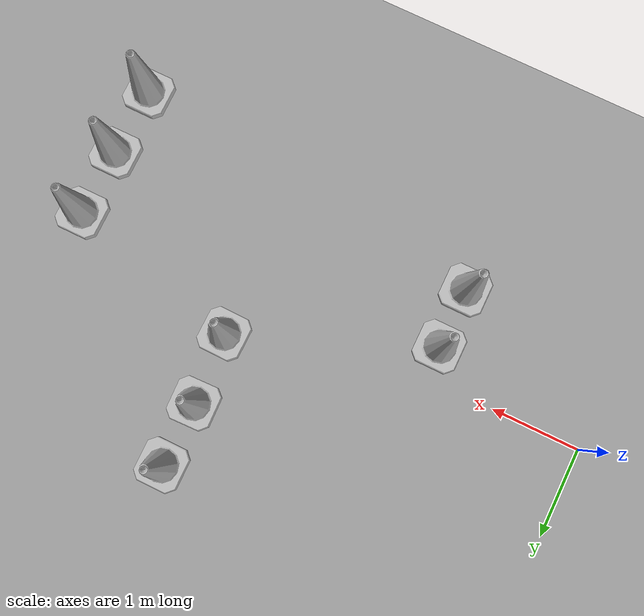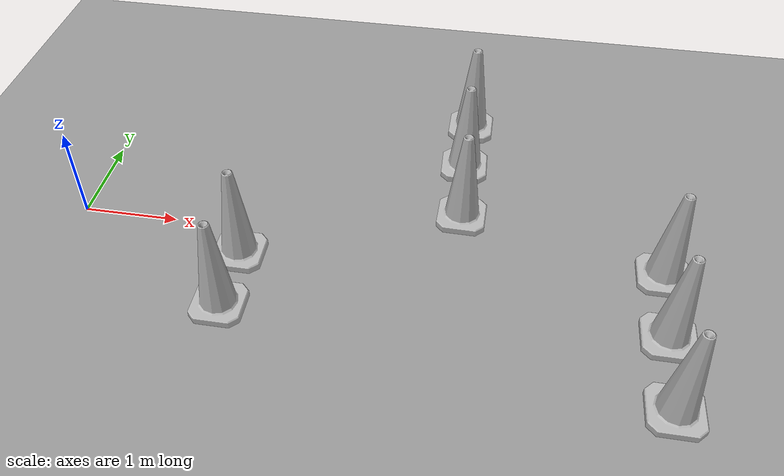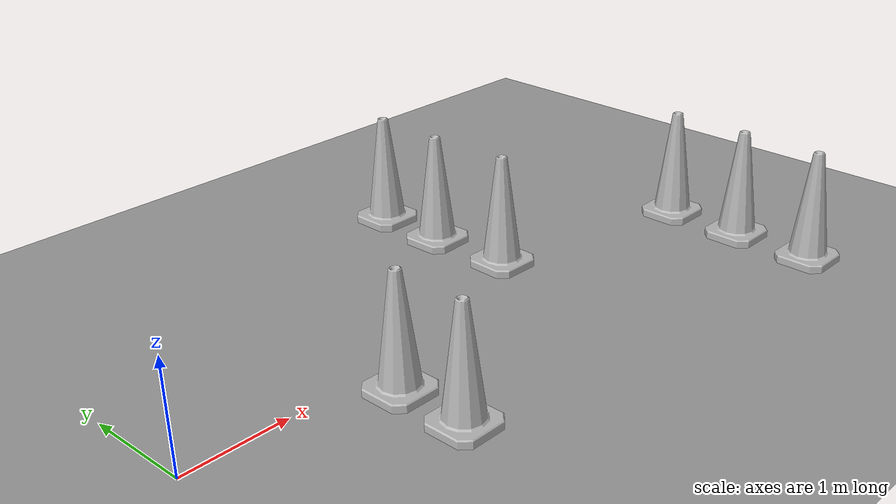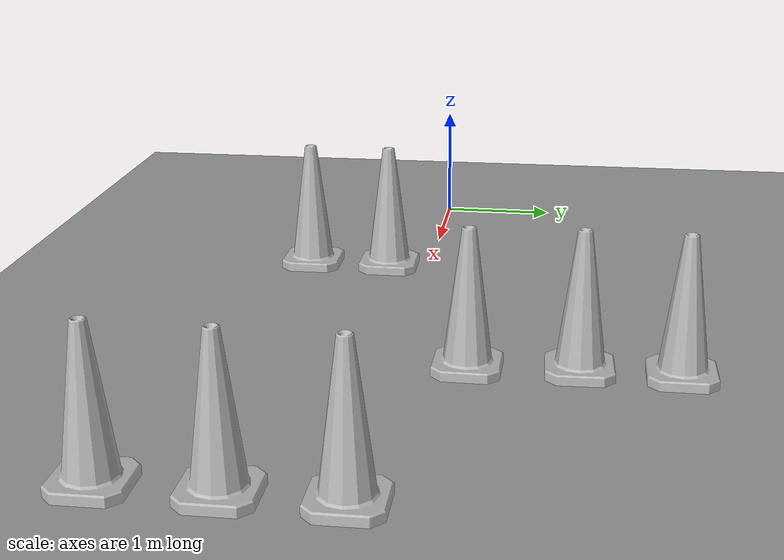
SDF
<sdf version="1.4">
 <world name="default">
  <light name="sun" type="directional">
   <pose>0 0 10 0 -0 0</pose>
   <diffuse>0.8 0.8 0.8 1</diffuse>
   <specular>0.2 0.2 0.2 1</specular>
   <attenuation>
    <range>1000</range>
    <constant>0.9</constant>
    <linear>0.01</linear>
    <quadratic>0.001</quadratic>
   </attenuation>
   <direction>0.5 0.1 -0.9</direction>
  </light>
  <scene><ambient>0.4 0.4 0.4 1</ambient><background>0.7 0.7 0.7 1</background><shadows>1</shadows></scene>
  <physics type="ode">
   <max_step_size>0.01</max_step_size>
   <real_time_factor>1</real_time_factor>
   <real_time_update_rate>100</real_time_update_rate>
   <gravity>0 0 -9.8</gravity>
  </physics>
  <model name="ground_plane_0">
   <static>1</static>
   <link name="link">
    <collision name="collision">
     <geometry><plane><normal>0 0 1</normal><size>100 100</size></plane></geometry>
     <surface><friction><ode><mu>100</mu><mu2>50</mu2></ode></friction></surface>
    </collision>
    <visual name="visual">
     <cast_shadows>0</cast_shadows>
     <geometry><plane><normal>0 0 1</normal><size>100 100</size></plane></geometry>
     <material>
      <script><uri>file://media/materials/scripts/gazebo.material</uri><name>Gazebo/Grey</name></script>
     </material>
    </visual>
    <velocity_decay><linear>0</linear><angular>0</angular></velocity_decay>
   </link>
   <pose>0.497681 0 0 0 -0 0</pose>
  </model>
  <spherical_coordinates>
   <surface_model>EARTH_WGS84</surface_model>
   <latitude_deg>0</latitude_deg>
   <longitude_deg>0</longitude_deg>
   <elevation>0</elevation>
   <heading_deg>0</heading_deg>
  </spherical_coordinates>
  <model name="Construction Cone_1">
   <link name="link">
    <collision name="collision">
     <geometry>
      <mesh><scale>10 10 10</scale><uri>model://construction_cone/meshes/construction_cone.dae</uri></mesh>
     </geometry>
    </collision>
    <visual name="visual">
     <geometry>
      <mesh><scale>10 10 10</scale><uri>model://construction_cone/meshes/construction_cone.dae</uri></mesh>
     </geometry>
    </visual>
    <velocity_decay><linear>0</linear><angular>0</angular></velocity_decay>
    <inertial>
     <inertia><ixx>1</ixx><ixy>0</ixy><ixz>0</ixz><iyy>1</iyy><iyz>0</iyz><izz>1</izz></inertia>
     <mass>1</mass>
    </inertial>
   </link>
   <pose>3.97138 0.526479 -0.000878 6e-06 1e-06 -0.016596</pose>
   <static>0</static>
  </model>
  <model name="Construction Cone_2">
   <link name="link">
    <collision name="collision">
     <geometry>
      <mesh><scale>10 10 10</scale><uri>model://construction_cone/meshes/construction_cone.dae</uri></mesh>
     </geometry>
    </collision>
    <visual name="visual">
     <geometry>
      <mesh><scale>10 10 10</scale><uri>model://construction_cone/meshes/construction_cone.dae</uri></mesh>
     </geometry>
    </visual>
    <velocity_decay><linear>0</linear><angular>0</angular></velocity_decay>
    <inertial>
     <inertia><ixx>1</ixx><ixy>0</ixy><ixz>0</ixz><iyy>1</iyy><iyz>0</iyz><izz>1</izz></inertia>
     <mass>1</mass>
    </inertial>
   </link>
   <pose>3.9279 1.33971 -0.000878 6e-06 1e-06 0.031594</pose>
   <static>0</static>
  </model>
  <model name="Construction Cone_3">
   <link name="link">
    <collision name="collision">
     <geometry>
      <mesh><scale>10 10 10</scale><uri>model://construction_cone/meshes/construction_cone.dae</uri></mesh>
     </geometry>
    </collision>
    <visual name="visual">
     <geometry>
      <mesh><scale>10 10 10</scale><uri>model://construction_cone/meshes/construction_cone.dae</uri></mesh>
     </geometry>
    </visual>
    <velocity_decay><linear>0</linear><angular>0</angular></velocity_decay>
    <inertial>
     <inertia><ixx>1</ixx><ixy>0</ixy><ixz>0</ixz><iyy>1</iyy><iyz>0</iyz><izz>1</izz></inertia>
     <mass>1</mass>
    </inertial>
   </link>
   <pose>3.94204 2.07112 -0.000878 6e-06 1e-06 -1e-06</pose>
   <static>0</static>
  </model>
  <model name="Construction Cone_4">
   <link name="link">
    <collision name="collision">
     <geometry>
      <mesh><scale>10 10 10</scale><uri>model://construction_cone/meshes/construction_cone.dae</uri></mesh>
     </geometry>
    </collision>
    <visual name="visual">
     <geometry>
      <mesh><scale>10 10 10</scale><uri>model://construction_cone/meshes/construction_cone.dae</uri></mesh>
     </geometry>
    </visual>
    <velocity_decay><linear>0</linear><angular>0</angular></velocity_decay>
    <inertial>
     <inertia><ixx>1</ixx><ixy>0</ixy><ixz>0</ixz><iyy>1</iyy><iyz>0</iyz><izz>1</izz></inertia>
     <mass>1</mass>
    </inertial>
   </link>
   <pose>1.79904 -1.05541 -0.000878 6e-06 1e-06 -1e-06</pose>
   <static>0</static>
  </model>
  <model name="Construction Cone_5">
   <link name="link">
    <collision name="collision">
     <geometry>
      <mesh><scale>10 10 10</scale><uri>model://construction_cone/meshes/construction_cone.dae</uri></mesh>
     </geometry>
    </collision>
    <visual name="visual">
     <geometry>
      <mesh><scale>10 10 10</scale><uri>model://construction_cone/meshes/construction_cone.dae</uri></mesh>
     </geometry>
    </visual>
    <velocity_decay><linear>0</linear><angular>0</angular></velocity_decay>
    <inertial>
     <inertia><ixx>1</ixx><ixy>0</ixy><ixz>0</ixz><iyy>1</iyy><iyz>0</iyz><izz>1</izz></inertia>
     <mass>1</mass>
    </inertial>
   </link>
   <pose>6 0 -0.000878 6e-06 1e-06 -1e-06</pose>
   <static>0</static>
  </model>
  <model name="Construction Cone_6">
   <link name="link">
    <collision name="collision">
     <geometry>
      <mesh><scale>10 10 10</scale><uri>model://construction_cone/meshes/construction_cone.dae</uri></mesh>
     </geometry>
    </collision>
    <visual name="visual">
     <geometry>
      <mesh><scale>10 10 10</scale><uri>model://construction_cone/meshes/construction_cone.dae</uri></mesh>
     </geometry>
    </visual>
    <velocity_decay><linear>0</linear><angular>0</angular></velocity_decay>
    <inertial>
     <inertia><ixx>1</ixx><ixy>0</ixy><ixz>0</ixz><iyy>1</iyy><iyz>0</iyz><izz>1</izz></inertia>
     <mass>1</mass>
    </inertial>
   </link>
   <pose>5.98856 -0.775895 -0.000878 6e-06 1e-06 -1e-06</pose>
   <static>0</static>
  </model>
  <model name="Construction Cone_7">
   <link name="link">
    <collision name="collision">
     <geometry>
      <mesh><scale>10 10 10</scale><uri>model://construction_cone/meshes/construction_cone.dae</uri></mesh>
     </geometry>
    </collision>
    <visual name="visual">
     <geometry>
      <mesh><scale>10 10 10</scale><uri>model://construction_cone/meshes/construction_cone.dae</uri></mesh>
     </geometry>
    </visual>
    <velocity_decay><linear>0</linear><angular>0</angular></velocity_decay>
    <inertial>
     <inertia><ixx>1</ixx><ixy>0</ixy><ixz>0</ixz><iyy>1</iyy><iyz>0</iyz><izz>1</izz></inertia>
     <mass>1</mass>
    </inertial>
   </link>
   <pose>5.97537 -1.56878 -0.000878 6e-06 1e-06 -1e-06</pose>
   <static>0</static>
  </model>
  <model name="Construction Cone_8">
   <link name="link">
    <collision name="collision">
     <geometry>
      <mesh><scale>10 10 10</scale><uri>model://construction_cone/meshes/construction_cone.dae</uri></mesh>
     </geometry>
    </collision>
    <visual name="visual">
     <geometry>
      <mesh><scale>10 10 10</scale><uri>model://construction_cone/meshes/construction_cone.dae</uri></mesh>
     </geometry>
    </visual>
    <velocity_decay><linear>0</linear><angular>0</angular></velocity_decay>
    <inertial>
     <inertia><ixx>1</ixx><ixy>0</ixy><ixz>0</ixz><iyy>1</iyy><iyz>0</iyz><izz>1</izz></inertia>
     <mass>1</mass>
    </inertial>
   </link>
   <pose>1.80172 -0.363514 -0.000878 6e-06 1e-06 -1e-06</pose>
   <static>0</static>
  </model>
 </world>
</sdf>
